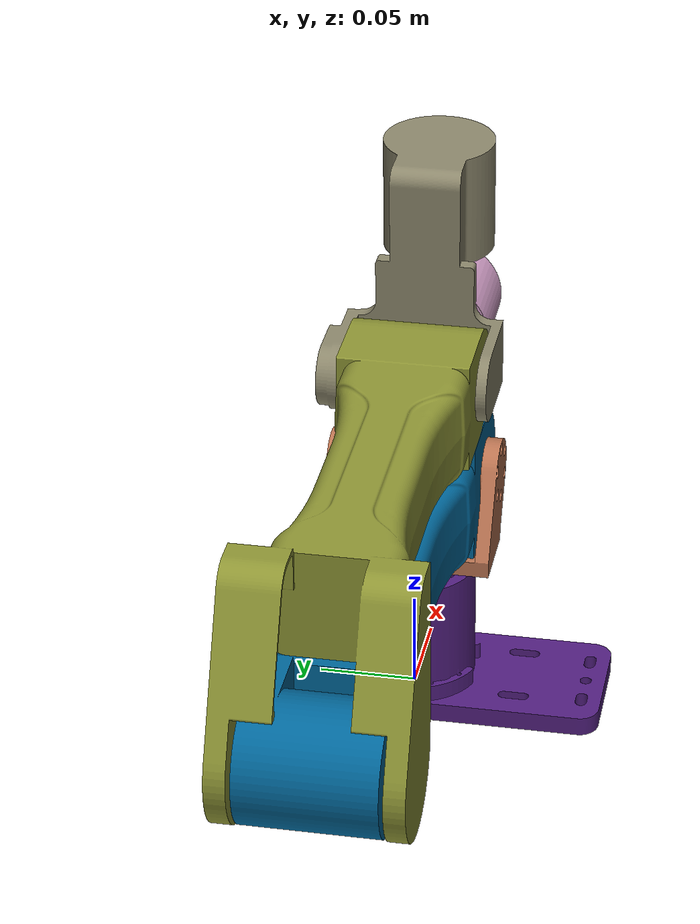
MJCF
<mujoco model="yam_ultra">
  <compiler angle="radian" meshdir="assets"/>

  <asset>
    <mesh name="base"  file="base.stl"/>
    <mesh name="link1" file="link1.stl"/>
    <mesh name="link2" file="link2.stl"/>
    <mesh name="link3" file="link3.stl"/>
    <mesh name="link4" file="link4.stl"/>
    <mesh name="link5" file="link5.stl"/>
  </asset>

  <worldbody>
    <body name="base" pos="0 0 0" quat="1 0 0 0">
      <inertial pos="-3.611e-05 2.26344e-05 0.0274792" quat="0.49954036332145396 0.50057947912270717 -0.49981383297991028 -0.5000657385342846" mass="0.940115" diaginertia="0.00081561760053630095 0.0016196011994023621 0.0018461202000613368"/>
      <geom pos="0.0374966 0.0464005 0.193801" quat="0 -0.70711 0 0.70711" type="mesh" rgba="0.317647 0.121569 0.498039 1" mesh="base"/>
      <body name="link1" pos="0 0 0.0733" quat="0 -0.70711 0 0.70711">
        <inertial pos="-0.0233636 -0.00172503 -0.00727828" quat="-0.64524361769733818 -0.21204348917963081 0.19681281961670494 0.70708057995669871" mass="0.101218" diaginertia="4.7181498384517786e-05 0.00010625072855078136 0.0001349130730647009"/>
        <joint name="joint1" pos="0 0 0" axis="-1 0 0" type="hinge" range="-2.61799 3.14159" actuatorfrcrange="-10 10"/>
        <geom pos="-0.119501 -0.0464 -0.0374968" quat="1 0 0 0" type="mesh" rgba="0.72549 0.45098 0.317647 1" mesh="link1"/>
        <body name="link2" pos="-0.0455 0.03285 -0.02" quat="1 0 0 0">
          <inertial pos="0.000134495 -0.0321253 0.129165" quat="-2.3381615529248389e-05 0.7071178193839055 -0.00013678541100874836 0.70709572919994479" mass="1.63122" diaginertia="0.00088839219885058791 0.01621030078414969 0.01628760001699971"/>
          <joint name="joint2" pos="0 0 0" axis="0 -1 0" type="hinge" range="0 3.66519" actuatorfrcrange="-10 10"/>
          <geom pos="-0.0740001 -0.07925 -0.0174977" quat="1 0 0 0" type="mesh" rgba="0 0.4 0.6 1" mesh="link2"/>
          <body name="link3" pos="0 -0.0678 0.264" quat="1 0 0 0">
            <inertial pos="-0.0556042 0.0357986 -0.135083" quat="0.66731174209529565 -0.084802100717435561 0.73417679498112642 0.092130756465431313" mass="1.06053" diaginertia="0.00094600153248459084 0.008235126571359665 0.0082592818961557436"/>
            <joint name="joint3" pos="0 0 0" axis="0 1 0" type="hinge" range="0 3.14159" actuatorfrcrange="-10 10"/>
            <geom pos="-0.0740003 -0.01145 -0.281499" quat="1 0 0 0" type="mesh" rgba="0.552941 0.580392 0.203922 1" mesh="link3"/>
            <body name="link4" pos="-0.0600003 0.0678 -0.244999" quat="1 0 0 0">
              <inertial pos="-0.0548959 -0.0350242 -0.0575534" quat="0.10060869424933633 0.94108565589177373 -0.079756064273633021 0.31284924345085735" mass="0.46079" diaginertia="0.00028693343582399274 0.00076414890931979132 0.00078554265485621599"/>
              <joint name="joint4" pos="0 0 0" axis="0 1 0" type="hinge" range="-1.69297 1.5708" actuatorfrcrange="-10 10"/>
              <geom pos="-0.0138003 -0.0802502 -0.0364989" quat="1 0 0 0" type="mesh" rgba="0.545098 0.52549 0.419608 1" mesh="link4"/>
              <body name="link5" pos="-0.0403003 -0.0338507 -0.0703851" quat="1 0 0 0">
                <inertial pos="0.0375847 -3.55003e-05 -0.00717397" quat="0.64668614070190822 0.64239183561513957 0.28865586152813083 -0.29292927229031912" mass="0.403307" diaginertia="0.00016964735642963316 0.00019568620481229821 0.00021979443875806869"/>
                <joint name="joint5" pos="0 0 0" axis="1 0 0" type="hinge" range="-1.5708 1.5708" actuatorfrcrange="-10 10"/>
                <geom pos="0.0265 -0.0463995 0.0311519" quat="1 0 0 0" type="mesh" rgba="0.827451 0.623529 0.784314 1" mesh="link5"/>
                <body name="gripper" pos="0.0404996 0 -0.0419481" quat="0 0.70711 0.70711 0">
                  <inertial pos="0 0 0" mass="1e-6" diaginertia="1e-9 1e-9 1e-9"/>
                  <joint name="joint6" pos="0 0 0" axis="0 0 1" type="hinge" range="-2.0944 2.0944" actuatorfrcrange="-10 10"/>
                </body>
              </body>
            </body>
          </body>
        </body>
      </body>
    </body>
  </worldbody>
</mujoco>
